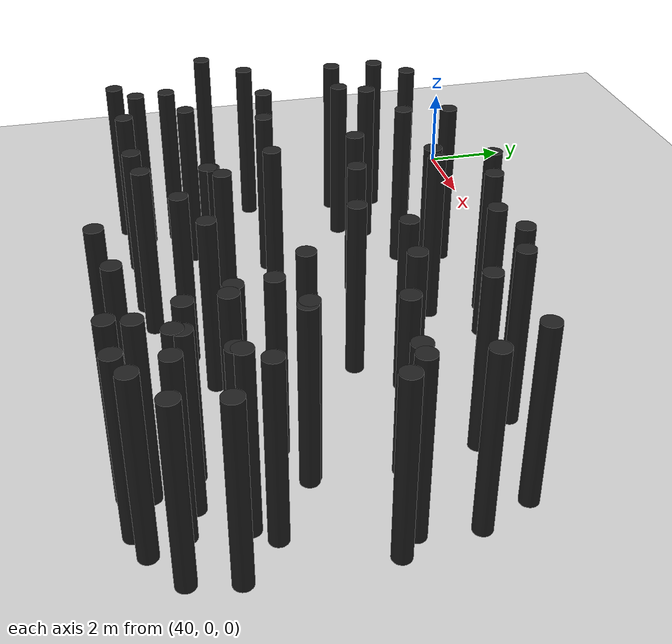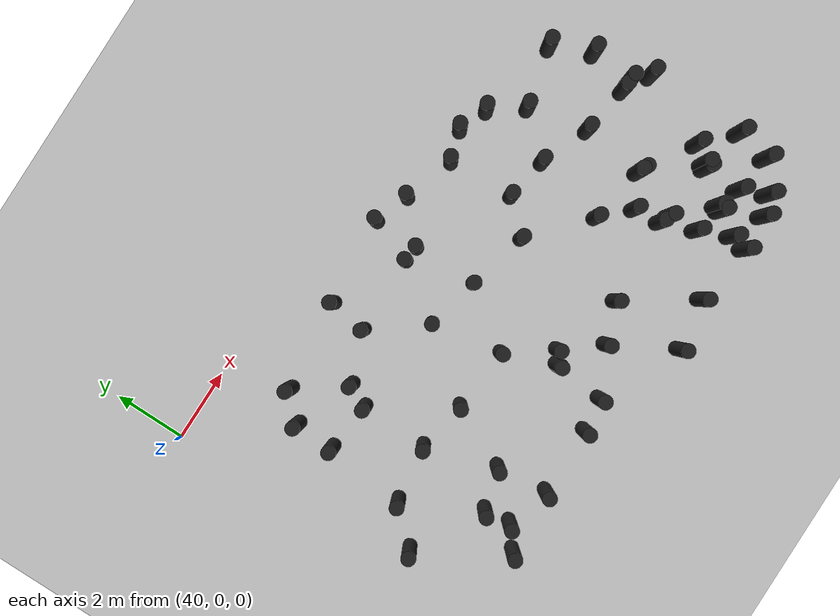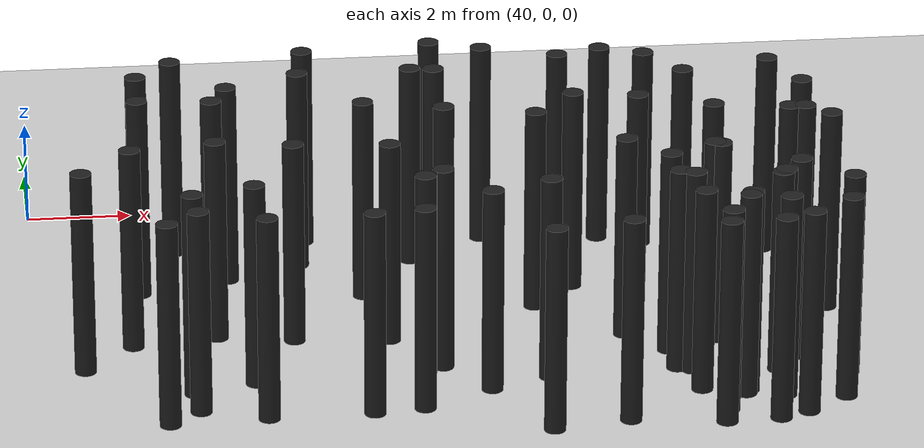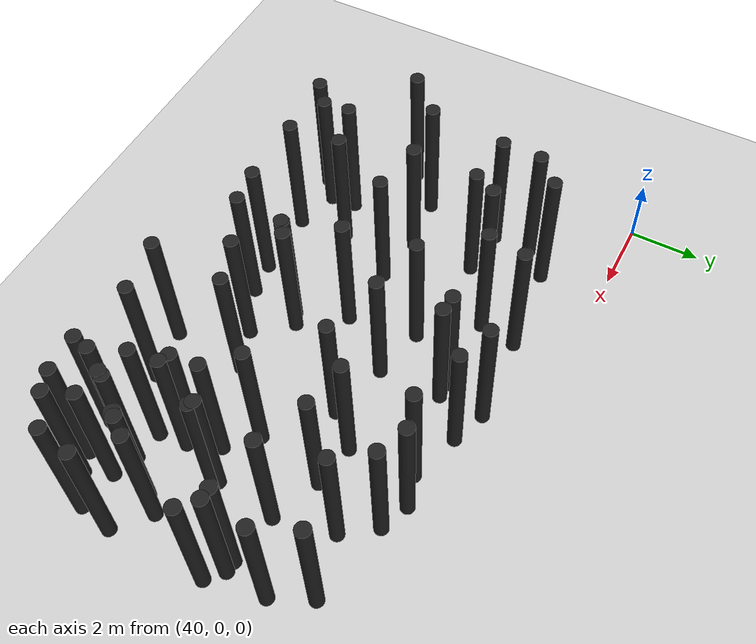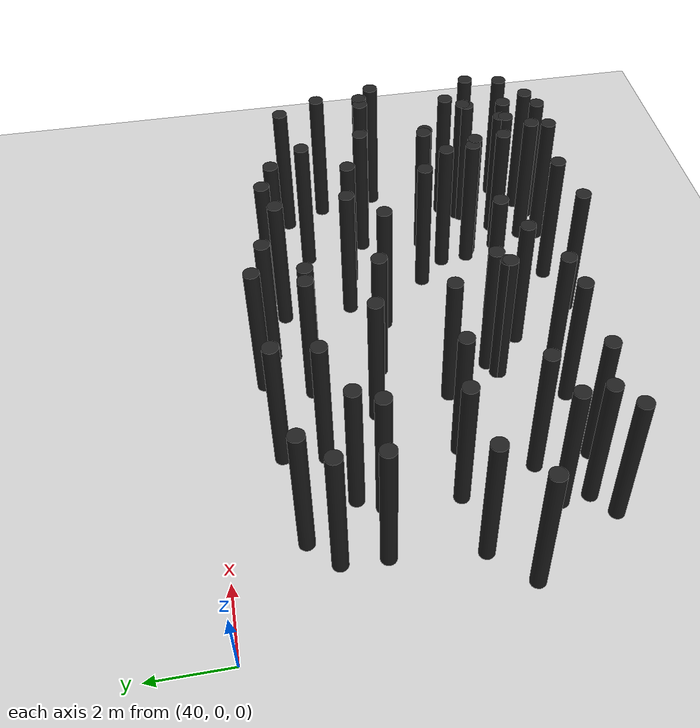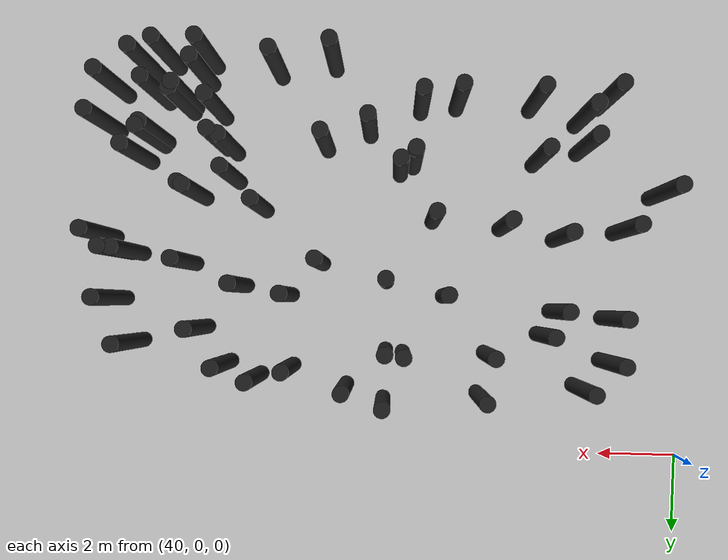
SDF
<sdf version="1.7">
 <world name="default">
  <model name="ground_plane">
   <static>1</static>
   <link name="link">
    <collision name="collision">
     <geometry><plane><normal>0 0 1</normal><size>200 200</size></plane></geometry>
     <surface><friction><ode><mu>100</mu><mu2>50</mu2></ode></friction></surface>
    </collision>
    <visual name="visual">
     <cast_shadows>0</cast_shadows>
     <geometry><plane><normal>0 0 1</normal><size>200 200</size></plane></geometry>
     <material>
      <script><uri>file://media/materials/scripts/gazebo.material</uri><name>Gazebo/Grey</name></script>
     </material>
    </visual>
   </link>
  </model>
  <model name="forest_clone_3_0">
   <pose>45.0865 -2.57981 0.00482 0 -0 0</pose>
   <static>1</static>
   <link name="cylinder::link">
    <inertial>
     <mass>1</mass>
     <inertia><ixx>0.083</ixx><ixy>0</ixy><ixz>0</ixz><iyy>0.083</iyy><iyz>0</iyz><izz>0.083</izz></inertia>
    </inertial>
    <collision name="collision">
     <geometry><cylinder><radius>0.2</radius><length>4</length></cylinder></geometry>
    </collision>
    <visual name="visual">
     <geometry><cylinder><radius>0.2</radius><length>4</length></cylinder></geometry>
     <material>
      <script><uri>file://media/materials/scripts/gazebo.material</uri><name>Gazebo/Black</name></script>
     </material>
    </visual>
    <pose>0 0 2 0 -0 0</pose>
   </link>
  </model>
  <model name="forest_clone_27_0">
   <pose>42.8595 -8.59229 0.00473 0 -0 0</pose>
   <static>1</static>
   <link name="cylinder::link">
    <inertial>
     <mass>1</mass>
     <inertia><ixx>0.083</ixx><ixy>0</ixy><ixz>0</ixz><iyy>0.083</iyy><iyz>0</iyz><izz>0.083</izz></inertia>
    </inertial>
    <collision name="collision">
     <geometry><cylinder><radius>0.2</radius><length>4</length></cylinder></geometry>
    </collision>
    <visual name="visual">
     <geometry><cylinder><radius>0.2</radius><length>4</length></cylinder></geometry>
     <material>
      <script><uri>file://media/materials/scripts/gazebo.material</uri><name>Gazebo/Black</name></script>
     </material>
    </visual>
    <pose>0 0 2 0 -0 0</pose>
   </link>
  </model>
  <model name="forest_clone_37_0">
   <pose>42.275 -9.06508 0.00423 0 -0 0</pose>
   <static>1</static>
   <link name="cylinder::link">
    <inertial>
     <mass>1</mass>
     <inertia><ixx>0.083</ixx><ixy>0</ixy><ixz>0</ixz><iyy>0.083</iyy><iyz>0</iyz><izz>0.083</izz></inertia>
    </inertial>
    <collision name="collision">
     <geometry><cylinder><radius>0.2</radius><length>4</length></cylinder></geometry>
    </collision>
    <visual name="visual">
     <geometry><cylinder><radius>0.2</radius><length>4</length></cylinder></geometry>
     <material>
      <script><uri>file://media/materials/scripts/gazebo.material</uri><name>Gazebo/Black</name></script>
     </material>
    </visual>
    <pose>0 0 2 0 -0 0</pose>
   </link>
  </model>
  <model name="forest_clone_39_0">
   <pose>45.2577 -1.52691 -0.00272 0 -0 0</pose>
   <static>1</static>
   <link name="cylinder::link">
    <inertial>
     <mass>1</mass>
     <inertia><ixx>0.083</ixx><ixy>0</ixy><ixz>0</ixz><iyy>0.083</iyy><iyz>0</iyz><izz>0.083</izz></inertia>
    </inertial>
    <collision name="collision">
     <geometry><cylinder><radius>0.2</radius><length>4</length></cylinder></geometry>
    </collision>
    <visual name="visual">
     <geometry><cylinder><radius>0.2</radius><length>4</length></cylinder></geometry>
     <material>
      <script><uri>file://media/materials/scripts/gazebo.material</uri><name>Gazebo/Black</name></script>
     </material>
    </visual>
    <pose>0 0 2 0 -0 0</pose>
   </link>
  </model>
  <model name="forest_clone_41_0">
   <pose>43.7077 -3.10852 0.00163 0 -0 0</pose>
   <static>1</static>
   <link name="cylinder::link">
    <inertial>
     <mass>1</mass>
     <inertia><ixx>0.083</ixx><ixy>0</ixy><ixz>0</ixz><iyy>0.083</iyy><iyz>0</iyz><izz>0.083</izz></inertia>
    </inertial>
    <collision name="collision">
     <geometry><cylinder><radius>0.2</radius><length>4</length></cylinder></geometry>
    </collision>
    <visual name="visual">
     <geometry><cylinder><radius>0.2</radius><length>4</length></cylinder></geometry>
     <material>
      <script><uri>file://media/materials/scripts/gazebo.material</uri><name>Gazebo/Black</name></script>
     </material>
    </visual>
    <pose>0 0 2 0 -0 0</pose>
   </link>
  </model>
  <model name="forest_clone_53_0">
   <pose>52.7878 -8.81428 0.00484 0 -0 0</pose>
   <static>1</static>
   <link name="cylinder::link">
    <inertial>
     <mass>1</mass>
     <inertia><ixx>0.083</ixx><ixy>0</ixy><ixz>0</ixz><iyy>0.083</iyy><iyz>0</iyz><izz>0.083</izz></inertia>
    </inertial>
    <collision name="collision">
     <geometry><cylinder><radius>0.2</radius><length>4</length></cylinder></geometry>
    </collision>
    <visual name="visual">
     <geometry><cylinder><radius>0.2</radius><length>4</length></cylinder></geometry>
     <material>
      <script><uri>file://media/materials/scripts/gazebo.material</uri><name>Gazebo/Black</name></script>
     </material>
    </visual>
    <pose>0 0 2 0 -0 0</pose>
   </link>
  </model>
  <model name="forest_clone_65_0">
   <pose>54.8232 -5.3583 0.00351 0 -0 0</pose>
   <static>1</static>
   <link name="cylinder::link">
    <inertial>
     <mass>1</mass>
     <inertia><ixx>0.083</ixx><ixy>0</ixy><ixz>0</ixz><iyy>0.083</iyy><iyz>0</iyz><izz>0.083</izz></inertia>
    </inertial>
    <collision name="collision">
     <geometry><cylinder><radius>0.2</radius><length>4</length></cylinder></geometry>
    </collision>
    <visual name="visual">
     <geometry><cylinder><radius>0.2</radius><length>4</length></cylinder></geometry>
     <material>
      <script><uri>file://media/materials/scripts/gazebo.material</uri><name>Gazebo/Black</name></script>
     </material>
    </visual>
    <pose>0 0 2 0 -0 0</pose>
   </link>
  </model>
  <model name="forest_clone_67_0">
   <pose>50.8869 -6.15588 0.0037 0 -0 0</pose>
   <static>1</static>
   <link name="cylinder::link">
    <inertial>
     <mass>1</mass>
     <inertia><ixx>0.083</ixx><ixy>0</ixy><ixz>0</ixz><iyy>0.083</iyy><iyz>0</iyz><izz>0.083</izz></inertia>
    </inertial>
    <collision name="collision">
     <geometry><cylinder><radius>0.2</radius><length>4</length></cylinder></geometry>
    </collision>
    <visual name="visual">
     <geometry><cylinder><radius>0.2</radius><length>4</length></cylinder></geometry>
     <material>
      <script><uri>file://media/materials/scripts/gazebo.material</uri><name>Gazebo/Black</name></script>
     </material>
    </visual>
    <pose>0 0 2 0 -0 0</pose>
   </link>
  </model>
  <model name="forest_clone_75_0">
   <pose>54.5928 -9.08068 -0.00293 0 -0 0</pose>
   <static>1</static>
   <link name="cylinder::link">
    <inertial>
     <mass>1</mass>
     <inertia><ixx>0.083</ixx><ixy>0</ixy><ixz>0</ixz><iyy>0.083</iyy><iyz>0</iyz><izz>0.083</izz></inertia>
    </inertial>
    <collision name="collision">
     <geometry><cylinder><radius>0.2</radius><length>4</length></cylinder></geometry>
    </collision>
    <visual name="visual">
     <geometry><cylinder><radius>0.2</radius><length>4</length></cylinder></geometry>
     <material>
      <script><uri>file://media/materials/scripts/gazebo.material</uri><name>Gazebo/Black</name></script>
     </material>
    </visual>
    <pose>0 0 2 0 -0 0</pose>
   </link>
  </model>
  <model name="forest_clone_77_0">
   <pose>42.796 -7.8609 0.00337 0 -0 0</pose>
   <static>1</static>
   <link name="cylinder::link">
    <inertial>
     <mass>1</mass>
     <inertia><ixx>0.083</ixx><ixy>0</ixy><ixz>0</ixz><iyy>0.083</iyy><iyz>0</iyz><izz>0.083</izz></inertia>
    </inertial>
    <collision name="collision">
     <geometry><cylinder><radius>0.2</radius><length>4</length></cylinder></geometry>
    </collision>
    <visual name="visual">
     <geometry><cylinder><radius>0.2</radius><length>4</length></cylinder></geometry>
     <material>
      <script><uri>file://media/materials/scripts/gazebo.material</uri><name>Gazebo/Black</name></script>
     </material>
    </visual>
    <pose>0 0 2 0 -0 0</pose>
   </link>
  </model>
  <model name="forest_clone_80_0">
   <pose>42.0502 -2.46728 0.00015 0 -0 0</pose>
   <static>1</static>
   <link name="cylinder::link">
    <inertial>
     <mass>1</mass>
     <inertia><ixx>0.083</ixx><ixy>0</ixy><ixz>0</ixz><iyy>0.083</iyy><iyz>0</iyz><izz>0.083</izz></inertia>
    </inertial>
    <collision name="collision">
     <geometry><cylinder><radius>0.2</radius><length>4</length></cylinder></geometry>
    </collision>
    <visual name="visual">
     <geometry><cylinder><radius>0.2</radius><length>4</length></cylinder></geometry>
     <material>
      <script><uri>file://media/materials/scripts/gazebo.material</uri><name>Gazebo/Black</name></script>
     </material>
    </visual>
    <pose>0 0 2 0 -0 0</pose>
   </link>
  </model>
  <model name="forest_clone_91_0">
   <pose>45.9877 -8.95202 0.00301 0 -0 0</pose>
   <static>1</static>
   <link name="cylinder::link">
    <inertial>
     <mass>1</mass>
     <inertia><ixx>0.083</ixx><ixy>0</ixy><ixz>0</ixz><iyy>0.083</iyy><iyz>0</iyz><izz>0.083</izz></inertia>
    </inertial>
    <collision name="collision">
     <geometry><cylinder><radius>0.2</radius><length>4</length></cylinder></geometry>
    </collision>
    <visual name="visual">
     <geometry><cylinder><radius>0.2</radius><length>4</length></cylinder></geometry>
     <material>
      <script><uri>file://media/materials/scripts/gazebo.material</uri><name>Gazebo/Black</name></script>
     </material>
    </visual>
    <pose>0 0 2 0 -0 0</pose>
   </link>
  </model>
  <model name="forest_clone_92_0">
   <pose>50.0754 -2.13382 -0.00176 0 -0 0</pose>
   <static>1</static>
   <link name="cylinder::link">
    <inertial>
     <mass>1</mass>
     <inertia><ixx>0.083</ixx><ixy>0</ixy><ixz>0</ixz><iyy>0.083</iyy><iyz>0</iyz><izz>0.083</izz></inertia>
    </inertial>
    <collision name="collision">
     <geometry><cylinder><radius>0.2</radius><length>4</length></cylinder></geometry>
    </collision>
    <visual name="visual">
     <geometry><cylinder><radius>0.2</radius><length>4</length></cylinder></geometry>
     <material>
      <script><uri>file://media/materials/scripts/gazebo.material</uri><name>Gazebo/Black</name></script>
     </material>
    </visual>
    <pose>0 0 2 0 -0 0</pose>
   </link>
  </model>
  <model name="forest_clone_110_0">
   <pose>52.2772 -9.89958 0.00273 0 -0 0</pose>
   <static>1</static>
   <link name="cylinder::link">
    <inertial>
     <mass>1</mass>
     <inertia><ixx>0.083</ixx><ixy>0</ixy><ixz>0</ixz><iyy>0.083</iyy><iyz>0</iyz><izz>0.083</izz></inertia>
    </inertial>
    <collision name="collision">
     <geometry><cylinder><radius>0.2</radius><length>4</length></cylinder></geometry>
    </collision>
    <visual name="visual">
     <geometry><cylinder><radius>0.2</radius><length>4</length></cylinder></geometry>
     <material>
      <script><uri>file://media/materials/scripts/gazebo.material</uri><name>Gazebo/Black</name></script>
     </material>
    </visual>
    <pose>0 0 2 0 -0 0</pose>
   </link>
  </model>
  <model name="forest_clone_114_0">
   <pose>52.3488 -3.0794 0.00284 0 -0 0</pose>
   <static>1</static>
   <link name="cylinder::link">
    <inertial>
     <mass>1</mass>
     <inertia><ixx>0.083</ixx><ixy>0</ixy><ixz>0</ixz><iyy>0.083</iyy><iyz>0</iyz><izz>0.083</izz></inertia>
    </inertial>
    <collision name="collision">
     <geometry><cylinder><radius>0.2</radius><length>4</length></cylinder></geometry>
    </collision>
    <visual name="visual">
     <geometry><cylinder><radius>0.2</radius><length>4</length></cylinder></geometry>
     <material>
      <script><uri>file://media/materials/scripts/gazebo.material</uri><name>Gazebo/Black</name></script>
     </material>
    </visual>
    <pose>0 0 2 0 -0 0</pose>
   </link>
  </model>
  <model name="forest_clone_118_0">
   <pose>48.2028 -8.18988 0.00289 0 -0 0</pose>
   <static>1</static>
   <link name="cylinder::link">
    <inertial>
     <mass>1</mass>
     <inertia><ixx>0.083</ixx><ixy>0</ixy><ixz>0</ixz><iyy>0.083</iyy><iyz>0</iyz><izz>0.083</izz></inertia>
    </inertial>
    <collision name="collision">
     <geometry><cylinder><radius>0.2</radius><length>4</length></cylinder></geometry>
    </collision>
    <visual name="visual">
     <geometry><cylinder><radius>0.2</radius><length>4</length></cylinder></geometry>
     <material>
      <script><uri>file://media/materials/scripts/gazebo.material</uri><name>Gazebo/Black</name></script>
     </material>
    </visual>
    <pose>0 0 2 0 -0 0</pose>
   </link>
  </model>
  <model name="forest_clone_124_0">
   <pose>54.1002 -4.94627 -0.00376 0 -0 0</pose>
   <static>1</static>
   <link name="cylinder::link">
    <inertial>
     <mass>1</mass>
     <inertia><ixx>0.083</ixx><ixy>0</ixy><ixz>0</ixz><iyy>0.083</iyy><iyz>0</iyz><izz>0.083</izz></inertia>
    </inertial>
    <collision name="collision">
     <geometry><cylinder><radius>0.2</radius><length>4</length></cylinder></geometry>
    </collision>
    <visual name="visual">
     <geometry><cylinder><radius>0.2</radius><length>4</length></cylinder></geometry>
     <material>
      <script><uri>file://media/materials/scripts/gazebo.material</uri><name>Gazebo/Black</name></script>
     </material>
    </visual>
    <pose>0 0 2 0 -0 0</pose>
   </link>
  </model>
  <model name="forest_clone_130_0">
   <pose>50.5599 -9.66449 0.0002 0 -0 0</pose>
   <static>1</static>
   <link name="cylinder::link">
    <inertial>
     <mass>1</mass>
     <inertia><ixx>0.083</ixx><ixy>0</ixy><ixz>0</ixz><iyy>0.083</iyy><iyz>0</iyz><izz>0.083</izz></inertia>
    </inertial>
    <collision name="collision">
     <geometry><cylinder><radius>0.2</radius><length>4</length></cylinder></geometry>
    </collision>
    <visual name="visual">
     <geometry><cylinder><radius>0.2</radius><length>4</length></cylinder></geometry>
     <material>
      <script><uri>file://media/materials/scripts/gazebo.material</uri><name>Gazebo/Black</name></script>
     </material>
    </visual>
    <pose>0 0 2 0 -0 0</pose>
   </link>
  </model>
  <model name="forest_clone_136_0">
   <pose>44.766 -5.82862 0.00143 0 -0 0</pose>
   <static>1</static>
   <link name="cylinder::link">
    <inertial>
     <mass>1</mass>
     <inertia><ixx>0.083</ixx><ixy>0</ixy><ixz>0</ixz><iyy>0.083</iyy><iyz>0</iyz><izz>0.083</izz></inertia>
    </inertial>
    <collision name="collision">
     <geometry><cylinder><radius>0.2</radius><length>4</length></cylinder></geometry>
    </collision>
    <visual name="visual">
     <geometry><cylinder><radius>0.2</radius><length>4</length></cylinder></geometry>
     <material>
      <script><uri>file://media/materials/scripts/gazebo.material</uri><name>Gazebo/Black</name></script>
     </material>
    </visual>
    <pose>0 0 2 0 -0 0</pose>
   </link>
  </model>
  <model name="forest_clone_144_0">
   <pose>51.3553 -4.17188 -0.00422 0 -0 0</pose>
   <static>1</static>
   <link name="cylinder::link">
    <inertial>
     <mass>1</mass>
     <inertia><ixx>0.083</ixx><ixy>0</ixy><ixz>0</ixz><iyy>0.083</iyy><iyz>0</iyz><izz>0.083</izz></inertia>
    </inertial>
    <collision name="collision">
     <geometry><cylinder><radius>0.2</radius><length>4</length></cylinder></geometry>
    </collision>
    <visual name="visual">
     <geometry><cylinder><radius>0.2</radius><length>4</length></cylinder></geometry>
     <material>
      <script><uri>file://media/materials/scripts/gazebo.material</uri><name>Gazebo/Black</name></script>
     </material>
    </visual>
    <pose>0 0 2 0 -0 0</pose>
   </link>
  </model>
  <model name="forest_clone_8_1">
   <pose>47.053 -7.43649 0.00048 0 -0 0</pose>
   <static>1</static>
   <link name="cylinder::link">
    <inertial>
     <mass>1</mass>
     <inertia><ixx>0.083</ixx><ixy>0</ixy><ixz>0</ixz><iyy>0.083</iyy><iyz>0</iyz><izz>0.083</izz></inertia>
    </inertial>
    <collision name="collision">
     <geometry><cylinder><radius>0.2</radius><length>4</length></cylinder></geometry>
    </collision>
    <visual name="visual">
     <geometry><cylinder><radius>0.2</radius><length>4</length></cylinder></geometry>
     <material>
      <script><uri>file://media/materials/scripts/gazebo.material</uri><name>Gazebo/Black</name></script>
     </material>
    </visual>
    <pose>0 0 2 0 -0 0</pose>
   </link>
  </model>
  <model name="forest_clone_24_1">
   <pose>51.9395 -7.75148 0.00053 0 -0 0</pose>
   <static>1</static>
   <link name="cylinder::link">
    <inertial>
     <mass>1</mass>
     <inertia><ixx>0.083</ixx><ixy>0</ixy><ixz>0</ixz><iyy>0.083</iyy><iyz>0</iyz><izz>0.083</izz></inertia>
    </inertial>
    <collision name="collision">
     <geometry><cylinder><radius>0.2</radius><length>4</length></cylinder></geometry>
    </collision>
    <visual name="visual">
     <geometry><cylinder><radius>0.2</radius><length>4</length></cylinder></geometry>
     <material>
      <script><uri>file://media/materials/scripts/gazebo.material</uri><name>Gazebo/Black</name></script>
     </material>
    </visual>
    <pose>0 0 2 0 -0 0</pose>
   </link>
  </model>
  <model name="forest_clone_28_1">
   <pose>52.8501 -8.67514 -0.00383 0 -0 0</pose>
   <static>1</static>
   <link name="cylinder::link">
    <inertial>
     <mass>1</mass>
     <inertia><ixx>0.083</ixx><ixy>0</ixy><ixz>0</ixz><iyy>0.083</iyy><iyz>0</iyz><izz>0.083</izz></inertia>
    </inertial>
    <collision name="collision">
     <geometry><cylinder><radius>0.2</radius><length>4</length></cylinder></geometry>
    </collision>
    <visual name="visual">
     <geometry><cylinder><radius>0.2</radius><length>4</length></cylinder></geometry>
     <material>
      <script><uri>file://media/materials/scripts/gazebo.material</uri><name>Gazebo/Black</name></script>
     </material>
    </visual>
    <pose>0 0 2 0 -0 0</pose>
   </link>
  </model>
  <model name="forest_clone_33_1">
   <pose>51.7141 -2.19165 -0.0033 0 -0 0</pose>
   <static>1</static>
   <link name="cylinder::link">
    <inertial>
     <mass>1</mass>
     <inertia><ixx>0.083</ixx><ixy>0</ixy><ixz>0</ixz><iyy>0.083</iyy><iyz>0</iyz><izz>0.083</izz></inertia>
    </inertial>
    <collision name="collision">
     <geometry><cylinder><radius>0.2</radius><length>4</length></cylinder></geometry>
    </collision>
    <visual name="visual">
     <geometry><cylinder><radius>0.2</radius><length>4</length></cylinder></geometry>
     <material>
      <script><uri>file://media/materials/scripts/gazebo.material</uri><name>Gazebo/Black</name></script>
     </material>
    </visual>
    <pose>0 0 2 0 -0 0</pose>
   </link>
  </model>
  <model name="forest_clone_63_1">
   <pose>47.4023 -7.18724 0.00406 0 -0 0</pose>
   <static>1</static>
   <link name="cylinder::link">
    <inertial>
     <mass>1</mass>
     <inertia><ixx>0.083</ixx><ixy>0</ixy><ixz>0</ixz><iyy>0.083</iyy><iyz>0</iyz><izz>0.083</izz></inertia>
    </inertial>
    <collision name="collision">
     <geometry><cylinder><radius>0.2</radius><length>4</length></cylinder></geometry>
    </collision>
    <visual name="visual">
     <geometry><cylinder><radius>0.2</radius><length>4</length></cylinder></geometry>
     <material>
      <script><uri>file://media/materials/scripts/gazebo.material</uri><name>Gazebo/Black</name></script>
     </material>
    </visual>
    <pose>0 0 2 0 -0 0</pose>
   </link>
  </model>
  <model name="forest_clone_68_1">
   <pose>49.3619 -4.80098 0.00459 0 -0 0</pose>
   <static>1</static>
   <link name="cylinder::link">
    <inertial>
     <mass>1</mass>
     <inertia><ixx>0.083</ixx><ixy>0</ixy><ixz>0</ixz><iyy>0.083</iyy><iyz>0</iyz><izz>0.083</izz></inertia>
    </inertial>
    <collision name="collision">
     <geometry><cylinder><radius>0.2</radius><length>4</length></cylinder></geometry>
    </collision>
    <visual name="visual">
     <geometry><cylinder><radius>0.2</radius><length>4</length></cylinder></geometry>
     <material>
      <script><uri>file://media/materials/scripts/gazebo.material</uri><name>Gazebo/Black</name></script>
     </material>
    </visual>
    <pose>0 0 2 0 -0 0</pose>
   </link>
  </model>
  <model name="forest_clone_69_1">
   <pose>47.6873 -4.37362 -0.0038 0 -0 0</pose>
   <static>1</static>
   <link name="cylinder::link">
    <inertial>
     <mass>1</mass>
     <inertia><ixx>0.083</ixx><ixy>0</ixy><ixz>0</ixz><iyy>0.083</iyy><iyz>0</iyz><izz>0.083</izz></inertia>
    </inertial>
    <collision name="collision">
     <geometry><cylinder><radius>0.2</radius><length>4</length></cylinder></geometry>
    </collision>
    <visual name="visual">
     <geometry><cylinder><radius>0.2</radius><length>4</length></cylinder></geometry>
     <material>
      <script><uri>file://media/materials/scripts/gazebo.material</uri><name>Gazebo/Black</name></script>
     </material>
    </visual>
    <pose>0 0 2 0 -0 0</pose>
   </link>
  </model>
  <model name="forest_clone_70_1">
   <pose>52.7039 -4.71907 -0.0016 0 -0 0</pose>
   <static>1</static>
   <link name="cylinder::link">
    <inertial>
     <mass>1</mass>
     <inertia><ixx>0.083</ixx><ixy>0</ixy><ixz>0</ixz><iyy>0.083</iyy><iyz>0</iyz><izz>0.083</izz></inertia>
    </inertial>
    <collision name="collision">
     <geometry><cylinder><radius>0.2</radius><length>4</length></cylinder></geometry>
    </collision>
    <visual name="visual">
     <geometry><cylinder><radius>0.2</radius><length>4</length></cylinder></geometry>
     <material>
      <script><uri>file://media/materials/scripts/gazebo.material</uri><name>Gazebo/Black</name></script>
     </material>
    </visual>
    <pose>0 0 2 0 -0 0</pose>
   </link>
  </model>
  <model name="forest_clone_71_1">
   <pose>51.6814 -7.6333 -0.00281 0 -0 0</pose>
   <static>1</static>
   <link name="cylinder::link">
    <inertial>
     <mass>1</mass>
     <inertia><ixx>0.083</ixx><ixy>0</ixy><ixz>0</ixz><iyy>0.083</iyy><iyz>0</iyz><izz>0.083</izz></inertia>
    </inertial>
    <collision name="collision">
     <geometry><cylinder><radius>0.2</radius><length>4</length></cylinder></geometry>
    </collision>
    <visual name="visual">
     <geometry><cylinder><radius>0.2</radius><length>4</length></cylinder></geometry>
     <material>
      <script><uri>file://media/materials/scripts/gazebo.material</uri><name>Gazebo/Black</name></script>
     </material>
    </visual>
    <pose>0 0 2 0 -0 0</pose>
   </link>
  </model>
  <model name="forest_clone_76_1">
   <pose>50.9136 -1.88013 -0.00144 0 -0 0</pose>
   <static>1</static>
   <link name="cylinder::link">
    <inertial>
     <mass>1</mass>
     <inertia><ixx>0.083</ixx><ixy>0</ixy><ixz>0</ixz><iyy>0.083</iyy><iyz>0</iyz><izz>0.083</izz></inertia>
    </inertial>
    <collision name="collision">
     <geometry><cylinder><radius>0.2</radius><length>4</length></cylinder></geometry>
    </collision>
    <visual name="visual">
     <geometry><cylinder><radius>0.2</radius><length>4</length></cylinder></geometry>
     <material>
      <script><uri>file://media/materials/scripts/gazebo.material</uri><name>Gazebo/Black</name></script>
     </material>
    </visual>
    <pose>0 0 2 0 -0 0</pose>
   </link>
  </model>
  <model name="forest_clone_85_1">
   <pose>47.6694 -2.59472 -0.00351 0 -0 0</pose>
   <static>1</static>
   <link name="cylinder::link">
    <inertial>
     <mass>1</mass>
     <inertia><ixx>0.083</ixx><ixy>0</ixy><ixz>0</ixz><iyy>0.083</iyy><iyz>0</iyz><izz>0.083</izz></inertia>
    </inertial>
    <collision name="collision">
     <geometry><cylinder><radius>0.2</radius><length>4</length></cylinder></geometry>
    </collision>
    <visual name="visual">
     <geometry><cylinder><radius>0.2</radius><length>4</length></cylinder></geometry>
     <material>
      <script><uri>file://media/materials/scripts/gazebo.material</uri><name>Gazebo/Black</name></script>
     </material>
    </visual>
    <pose>0 0 2 0 -0 0</pose>
   </link>
  </model>
  <model name="forest_clone_87_1">
   <pose>53.5062 -8.92436 -0.00485 0 -0 0</pose>
   <static>1</static>
   <link name="cylinder::link">
    <inertial>
     <mass>1</mass>
     <inertia><ixx>0.083</ixx><ixy>0</ixy><ixz>0</ixz><iyy>0.083</iyy><iyz>0</iyz><izz>0.083</izz></inertia>
    </inertial>
    <collision name="collision">
     <geometry><cylinder><radius>0.2</radius><length>4</length></cylinder></geometry>
    </collision>
    <visual name="visual">
     <geometry><cylinder><radius>0.2</radius><length>4</length></cylinder></geometry>
     <material>
      <script><uri>file://media/materials/scripts/gazebo.material</uri><name>Gazebo/Black</name></script>
     </material>
    </visual>
    <pose>0 0 2 0 -0 0</pose>
   </link>
  </model>
  <model name="forest_clone_88_1">
   <pose>53.9357 -7.35327 0.00427 0 -0 0</pose>
   <static>1</static>
   <link name="cylinder::link">
    <inertial>
     <mass>1</mass>
     <inertia><ixx>0.083</ixx><ixy>0</ixy><ixz>0</ixz><iyy>0.083</iyy><iyz>0</iyz><izz>0.083</izz></inertia>
    </inertial>
    <collision name="collision">
     <geometry><cylinder><radius>0.2</radius><length>4</length></cylinder></geometry>
    </collision>
    <visual name="visual">
     <geometry><cylinder><radius>0.2</radius><length>4</length></cylinder></geometry>
     <material>
      <script><uri>file://media/materials/scripts/gazebo.material</uri><name>Gazebo/Black</name></script>
     </material>
    </visual>
    <pose>0 0 2 0 -0 0</pose>
   </link>
  </model>
  <model name="forest_clone_97_1">
   <pose>49.146 -9.90477 0.00299 0 -0 0</pose>
   <static>1</static>
   <link name="cylinder::link">
    <inertial>
     <mass>1</mass>
     <inertia><ixx>0.083</ixx><ixy>0</ixy><ixz>0</ixz><iyy>0.083</iyy><iyz>0</iyz><izz>0.083</izz></inertia>
    </inertial>
    <collision name="collision">
     <geometry><cylinder><radius>0.2</radius><length>4</length></cylinder></geometry>
    </collision>
    <visual name="visual">
     <geometry><cylinder><radius>0.2</radius><length>4</length></cylinder></geometry>
     <material>
      <script><uri>file://media/materials/scripts/gazebo.material</uri><name>Gazebo/Black</name></script>
     </material>
    </visual>
    <pose>0 0 2 0 -0 0</pose>
   </link>
  </model>
  <model name="forest_clone_104_1">
   <pose>54.0204 -2.68612 0.00015 0 -0 0</pose>
   <static>1</static>
   <link name="cylinder::link">
    <inertial>
     <mass>1</mass>
     <inertia><ixx>0.083</ixx><ixy>0</ixy><ixz>0</ixz><iyy>0.083</iyy><iyz>0</iyz><izz>0.083</izz></inertia>
    </inertial>
    <collision name="collision">
     <geometry><cylinder><radius>0.2</radius><length>4</length></cylinder></geometry>
    </collision>
    <visual name="visual">
     <geometry><cylinder><radius>0.2</radius><length>4</length></cylinder></geometry>
     <material>
      <script><uri>file://media/materials/scripts/gazebo.material</uri><name>Gazebo/Black</name></script>
     </material>
    </visual>
    <pose>0 0 2 0 -0 0</pose>
   </link>
  </model>
  <model name="forest_clone_148_1">
   <pose>49.3062 -7.78062 -0.00306 0 -0 0</pose>
   <static>1</static>
   <link name="cylinder::link">
    <inertial>
     <mass>1</mass>
     <inertia><ixx>0.083</ixx><ixy>0</ixy><ixz>0</ixz><iyy>0.083</iyy><iyz>0</iyz><izz>0.083</izz></inertia>
    </inertial>
    <collision name="collision">
     <geometry><cylinder><radius>0.2</radius><length>4</length></cylinder></geometry>
    </collision>
    <visual name="visual">
     <geometry><cylinder><radius>0.2</radius><length>4</length></cylinder></geometry>
     <material>
      <script><uri>file://media/materials/scripts/gazebo.material</uri><name>Gazebo/Black</name></script>
     </material>
    </visual>
    <pose>0 0 2 0 -0 0</pose>
   </link>
  </model>
  <model name="forest_clone_149_1">
   <pose>47.7037 -1.32897 0.00127 0 -0 0</pose>
   <static>1</static>
   <link name="cylinder::link">
    <inertial>
     <mass>1</mass>
     <inertia><ixx>0.083</ixx><ixy>0</ixy><ixz>0</ixz><iyy>0.083</iyy><iyz>0</iyz><izz>0.083</izz></inertia>
    </inertial>
    <collision name="collision">
     <geometry><cylinder><radius>0.2</radius><length>4</length></cylinder></geometry>
    </collision>
    <visual name="visual">
     <geometry><cylinder><radius>0.2</radius><length>4</length></cylinder></geometry>
     <material>
      <script><uri>file://media/materials/scripts/gazebo.material</uri><name>Gazebo/Black</name></script>
     </material>
    </visual>
    <pose>0 0 2 0 -0 0</pose>
   </link>
  </model>
  <model name="forest_clone_1_2">
   <pose>43.9375 -7.53225 -0.0021 0 -0 0</pose>
   <static>1</static>
   <link name="cylinder::link">
    <inertial>
     <mass>1</mass>
     <inertia><ixx>0.083</ixx><ixy>0</ixy><ixz>0</ixz><iyy>0.083</iyy><iyz>0</iyz><izz>0.083</izz></inertia>
    </inertial>
    <collision name="collision">
     <geometry><cylinder><radius>0.2</radius><length>4</length></cylinder></geometry>
    </collision>
    <visual name="visual">
     <geometry><cylinder><radius>0.2</radius><length>4</length></cylinder></geometry>
     <material>
      <script><uri>file://media/materials/scripts/gazebo.material</uri><name>Gazebo/Black</name></script>
     </material>
    </visual>
    <pose>0 0 2 0 -0 0</pose>
   </link>
  </model>
  <model name="forest_clone_8_2">
   <pose>47.0683 -7.39203 -0.00133 0 -0 0</pose>
   <static>1</static>
   <link name="cylinder::link">
    <inertial>
     <mass>1</mass>
     <inertia><ixx>0.083</ixx><ixy>0</ixy><ixz>0</ixz><iyy>0.083</iyy><iyz>0</iyz><izz>0.083</izz></inertia>
    </inertial>
    <collision name="collision">
     <geometry><cylinder><radius>0.2</radius><length>4</length></cylinder></geometry>
    </collision>
    <visual name="visual">
     <geometry><cylinder><radius>0.2</radius><length>4</length></cylinder></geometry>
     <material>
      <script><uri>file://media/materials/scripts/gazebo.material</uri><name>Gazebo/Black</name></script>
     </material>
    </visual>
    <pose>0 0 2 0 -0 0</pose>
   </link>
  </model>
  <model name="forest_clone_11_2">
   <pose>52.3805 -9.43186 0.00411 0 -0 0</pose>
   <static>1</static>
   <link name="cylinder::link">
    <inertial>
     <mass>1</mass>
     <inertia><ixx>0.083</ixx><ixy>0</ixy><ixz>0</ixz><iyy>0.083</iyy><iyz>0</iyz><izz>0.083</izz></inertia>
    </inertial>
    <collision name="collision">
     <geometry><cylinder><radius>0.2</radius><length>4</length></cylinder></geometry>
    </collision>
    <visual name="visual">
     <geometry><cylinder><radius>0.2</radius><length>4</length></cylinder></geometry>
     <material>
      <script><uri>file://media/materials/scripts/gazebo.material</uri><name>Gazebo/Black</name></script>
     </material>
    </visual>
    <pose>0 0 2 0 -0 0</pose>
   </link>
  </model>
  <model name="forest_clone_19_2">
   <pose>47.2258 -2.5448 0.00111 0 -0 0</pose>
   <static>1</static>
   <link name="cylinder::link">
    <inertial>
     <mass>1</mass>
     <inertia><ixx>0.083</ixx><ixy>0</ixy><ixz>0</ixz><iyy>0.083</iyy><iyz>0</iyz><izz>0.083</izz></inertia>
    </inertial>
    <collision name="collision">
     <geometry><cylinder><radius>0.2</radius><length>4</length></cylinder></geometry>
    </collision>
    <visual name="visual">
     <geometry><cylinder><radius>0.2</radius><length>4</length></cylinder></geometry>
     <material>
      <script><uri>file://media/materials/scripts/gazebo.material</uri><name>Gazebo/Black</name></script>
     </material>
    </visual>
    <pose>0 0 2 0 -0 0</pose>
   </link>
  </model>
  <model name="forest_clone_25_2">
   <pose>54.7881 -8.13181 0.00267 0 -0 0</pose>
   <static>1</static>
   <link name="cylinder::link">
    <inertial>
     <mass>1</mass>
     <inertia><ixx>0.083</ixx><ixy>0</ixy><ixz>0</ixz><iyy>0.083</iyy><iyz>0</iyz><izz>0.083</izz></inertia>
    </inertial>
    <collision name="collision">
     <geometry><cylinder><radius>0.2</radius><length>4</length></cylinder></geometry>
    </collision>
    <visual name="visual">
     <geometry><cylinder><radius>0.2</radius><length>4</length></cylinder></geometry>
     <material>
      <script><uri>file://media/materials/scripts/gazebo.material</uri><name>Gazebo/Black</name></script>
     </material>
    </visual>
    <pose>0 0 2 0 -0 0</pose>
   </link>
  </model>
  <model name="forest_clone_29_2">
   <pose>53.5215 -7.88224 -0.00162 0 -0 0</pose>
   <static>1</static>
   <link name="cylinder::link">
    <inertial>
     <mass>1</mass>
     <inertia><ixx>0.083</ixx><ixy>0</ixy><ixz>0</ixz><iyy>0.083</iyy><iyz>0</iyz><izz>0.083</izz></inertia>
    </inertial>
    <collision name="collision">
     <geometry><cylinder><radius>0.2</radius><length>4</length></cylinder></geometry>
    </collision>
    <visual name="visual">
     <geometry><cylinder><radius>0.2</radius><length>4</length></cylinder></geometry>
     <material>
      <script><uri>file://media/materials/scripts/gazebo.material</uri><name>Gazebo/Black</name></script>
     </material>
    </visual>
    <pose>0 0 2 0 -0 0</pose>
   </link>
  </model>
  <model name="forest_clone_33_2">
   <pose>53.2727 -9.84897 0.00201 0 -0 0</pose>
   <static>1</static>
   <link name="cylinder::link">
    <inertial>
     <mass>1</mass>
     <inertia><ixx>0.083</ixx><ixy>0</ixy><ixz>0</ixz><iyy>0.083</iyy><iyz>0</iyz><izz>0.083</izz></inertia>
    </inertial>
    <collision name="collision">
     <geometry><cylinder><radius>0.2</radius><length>4</length></cylinder></geometry>
    </collision>
    <visual name="visual">
     <geometry><cylinder><radius>0.2</radius><length>4</length></cylinder></geometry>
     <material>
      <script><uri>file://media/materials/scripts/gazebo.material</uri><name>Gazebo/Black</name></script>
     </material>
    </visual>
    <pose>0 0 2 0 -0 0</pose>
   </link>
  </model>
  <model name="forest_clone_34_2">
   <pose>50.1613 -3.96493 -0.00283 0 -0 0</pose>
   <static>1</static>
   <link name="cylinder::link">
    <inertial>
     <mass>1</mass>
     <inertia><ixx>0.083</ixx><ixy>0</ixy><ixz>0</ixz><iyy>0.083</iyy><iyz>0</iyz><izz>0.083</izz></inertia>
    </inertial>
    <collision name="collision">
     <geometry><cylinder><radius>0.2</radius><length>4</length></cylinder></geometry>
    </collision>
    <visual name="visual">
     <geometry><cylinder><radius>0.2</radius><length>4</length></cylinder></geometry>
     <material>
      <script><uri>file://media/materials/scripts/gazebo.material</uri><name>Gazebo/Black</name></script>
     </material>
    </visual>
    <pose>0 0 2 0 -0 0</pose>
   </link>
  </model>
  <model name="forest_clone_48_2">
   <pose>41.7729 -5.7985 -0.00416 0 -0 0</pose>
   <static>1</static>
   <link name="cylinder::link">
    <inertial>
     <mass>1</mass>
     <inertia><ixx>0.083</ixx><ixy>0</ixy><ixz>0</ixz><iyy>0.083</iyy><iyz>0</iyz><izz>0.083</izz></inertia>
    </inertial>
    <collision name="collision">
     <geometry><cylinder><radius>0.2</radius><length>4</length></cylinder></geometry>
    </collision>
    <visual name="visual">
     <geometry><cylinder><radius>0.2</radius><length>4</length></cylinder></geometry>
     <material>
      <script><uri>file://media/materials/scripts/gazebo.material</uri><name>Gazebo/Black</name></script>
     </material>
    </visual>
    <pose>0 0 2 0 -0 0</pose>
   </link>
  </model>
  <model name="forest_clone_59_2">
   <pose>54.5114 -3.76752 0.00081 0 -0 0</pose>
   <static>1</static>
   <link name="cylinder::link">
    <inertial>
     <mass>1</mass>
     <inertia><ixx>0.083</ixx><ixy>0</ixy><ixz>0</ixz><iyy>0.083</iyy><iyz>0</iyz><izz>0.083</izz></inertia>
    </inertial>
    <collision name="collision">
     <geometry><cylinder><radius>0.2</radius><length>4</length></cylinder></geometry>
    </collision>
    <visual name="visual">
     <geometry><cylinder><radius>0.2</radius><length>4</length></cylinder></geometry>
     <material>
      <script><uri>file://media/materials/scripts/gazebo.material</uri><name>Gazebo/Black</name></script>
     </material>
    </visual>
    <pose>0 0 2 0 -0 0</pose>
   </link>
  </model>
  <model name="forest_clone_70_2">
   <pose>46.9104 -8.83331 -0.00032 0 -0 0</pose>
   <static>1</static>
   <link name="cylinder::link">
    <inertial>
     <mass>1</mass>
     <inertia><ixx>0.083</ixx><ixy>0</ixy><ixz>0</ixz><iyy>0.083</iyy><iyz>0</iyz><izz>0.083</izz></inertia>
    </inertial>
    <collision name="collision">
     <geometry><cylinder><radius>0.2</radius><length>4</length></cylinder></geometry>
    </collision>
    <visual name="visual">
     <geometry><cylinder><radius>0.2</radius><length>4</length></cylinder></geometry>
     <material>
      <script><uri>file://media/materials/scripts/gazebo.material</uri><name>Gazebo/Black</name></script>
     </material>
    </visual>
    <pose>0 0 2 0 -0 0</pose>
   </link>
  </model>
  <model name="forest_clone_72_2">
   <pose>46.5327 -5.97388 -0.0003 0 -0 0</pose>
   <static>1</static>
   <link name="cylinder::link">
    <inertial>
     <mass>1</mass>
     <inertia><ixx>0.083</ixx><ixy>0</ixy><ixz>0</ixz><iyy>0.083</iyy><iyz>0</iyz><izz>0.083</izz></inertia>
    </inertial>
    <collision name="collision">
     <geometry><cylinder><radius>0.2</radius><length>4</length></cylinder></geometry>
    </collision>
    <visual name="visual">
     <geometry><cylinder><radius>0.2</radius><length>4</length></cylinder></geometry>
     <material>
      <script><uri>file://media/materials/scripts/gazebo.material</uri><name>Gazebo/Black</name></script>
     </material>
    </visual>
    <pose>0 0 2 0 -0 0</pose>
   </link>
  </model>
  <model name="forest_clone_78_2">
   <pose>43.3908 -3.71417 0.00123 0 -0 0</pose>
   <static>1</static>
   <link name="cylinder::link">
    <inertial>
     <mass>1</mass>
     <inertia><ixx>0.083</ixx><ixy>0</ixy><ixz>0</ixz><iyy>0.083</iyy><iyz>0</iyz><izz>0.083</izz></inertia>
    </inertial>
    <collision name="collision">
     <geometry><cylinder><radius>0.2</radius><length>4</length></cylinder></geometry>
    </collision>
    <visual name="visual">
     <geometry><cylinder><radius>0.2</radius><length>4</length></cylinder></geometry>
     <material>
      <script><uri>file://media/materials/scripts/gazebo.material</uri><name>Gazebo/Black</name></script>
     </material>
    </visual>
    <pose>0 0 2 0 -0 0</pose>
   </link>
  </model>
  <model name="forest_clone_87_2">
   <pose>54.3936 -4.96412 -0.003 0 -0 0</pose>
   <static>1</static>
   <link name="cylinder::link">
    <inertial>
     <mass>1</mass>
     <inertia><ixx>0.083</ixx><ixy>0</ixy><ixz>0</ixz><iyy>0.083</iyy><iyz>0</iyz><izz>0.083</izz></inertia>
    </inertial>
    <collision name="collision">
     <geometry><cylinder><radius>0.2</radius><length>4</length></cylinder></geometry>
    </collision>
    <visual name="visual">
     <geometry><cylinder><radius>0.2</radius><length>4</length></cylinder></geometry>
     <material>
      <script><uri>file://media/materials/scripts/gazebo.material</uri><name>Gazebo/Black</name></script>
     </material>
    </visual>
    <pose>0 0 2 0 -0 0</pose>
   </link>
  </model>
  <model name="forest_clone_90_2">
   <pose>42.7341 -1.79485 -0.00369 0 -0 0</pose>
   <static>1</static>
   <link name="cylinder::link">
    <inertial>
     <mass>1</mass>
     <inertia><ixx>0.083</ixx><ixy>0</ixy><ixz>0</ixz><iyy>0.083</iyy><iyz>0</iyz><izz>0.083</izz></inertia>
    </inertial>
    <collision name="collision">
     <geometry><cylinder><radius>0.2</radius><length>4</length></cylinder></geometry>
    </collision>
    <visual name="visual">
     <geometry><cylinder><radius>0.2</radius><length>4</length></cylinder></geometry>
     <material>
      <script><uri>file://media/materials/scripts/gazebo.material</uri><name>Gazebo/Black</name></script>
     </material>
    </visual>
    <pose>0 0 2 0 -0 0</pose>
   </link>
  </model>
  <model name="forest_clone_99_2">
   <pose>43.3495 -5.57824 0.0019 0 -0 0</pose>
   <static>1</static>
   <link name="cylinder::link">
    <inertial>
     <mass>1</mass>
     <inertia><ixx>0.083</ixx><ixy>0</ixy><ixz>0</ixz><iyy>0.083</iyy><iyz>0</iyz><izz>0.083</izz></inertia>
    </inertial>
    <collision name="collision">
     <geometry><cylinder><radius>0.2</radius><length>4</length></cylinder></geometry>
    </collision>
    <visual name="visual">
     <geometry><cylinder><radius>0.2</radius><length>4</length></cylinder></geometry>
     <material>
      <script><uri>file://media/materials/scripts/gazebo.material</uri><name>Gazebo/Black</name></script>
     </material>
    </visual>
    <pose>0 0 2 0 -0 0</pose>
   </link>
  </model>
  <model name="forest_clone_102_2">
   <pose>51.6109 -6.88549 -0.00183 0 -0 0</pose>
   <static>1</static>
   <link name="cylinder::link">
    <inertial>
     <mass>1</mass>
     <inertia><ixx>0.083</ixx><ixy>0</ixy><ixz>0</ixz><iyy>0.083</iyy><iyz>0</iyz><izz>0.083</izz></inertia>
    </inertial>
    <collision name="collision">
     <geometry><cylinder><radius>0.2</radius><length>4</length></cylinder></geometry>
    </collision>
    <visual name="visual">
     <geometry><cylinder><radius>0.2</radius><length>4</length></cylinder></geometry>
     <material>
      <script><uri>file://media/materials/scripts/gazebo.material</uri><name>Gazebo/Black</name></script>
     </material>
    </visual>
    <pose>0 0 2 0 -0 0</pose>
   </link>
  </model>
  <model name="forest_clone_111_2">
   <pose>40.845 -6.74366 -0.00142 0 -0 0</pose>
   <static>1</static>
   <link name="cylinder::link">
    <inertial>
     <mass>1</mass>
     <inertia><ixx>0.083</ixx><ixy>0</ixy><ixz>0</ixz><iyy>0.083</iyy><iyz>0</iyz><izz>0.083</izz></inertia>
    </inertial>
    <collision name="collision">
     <geometry><cylinder><radius>0.2</radius><length>4</length></cylinder></geometry>
    </collision>
    <visual name="visual">
     <geometry><cylinder><radius>0.2</radius><length>4</length></cylinder></geometry>
     <material>
      <script><uri>file://media/materials/scripts/gazebo.material</uri><name>Gazebo/Black</name></script>
     </material>
    </visual>
    <pose>0 0 2 0 -0 0</pose>
   </link>
  </model>
  <model name="forest_clone_116_2">
   <pose>46.2064 -4.03217 0.0018 0 -0 0</pose>
   <static>1</static>
   <link name="cylinder::link">
    <inertial>
     <mass>1</mass>
     <inertia><ixx>0.083</ixx><ixy>0</ixy><ixz>0</ixz><iyy>0.083</iyy><iyz>0</iyz><izz>0.083</izz></inertia>
    </inertial>
    <collision name="collision">
     <geometry><cylinder><radius>0.2</radius><length>4</length></cylinder></geometry>
    </collision>
    <visual name="visual">
     <geometry><cylinder><radius>0.2</radius><length>4</length></cylinder></geometry>
     <material>
      <script><uri>file://media/materials/scripts/gazebo.material</uri><name>Gazebo/Black</name></script>
     </material>
    </visual>
    <pose>0 0 2 0 -0 0</pose>
   </link>
  </model>
  <model name="forest_clone_122_2">
   <pose>52.4819 -6.43916 -0.00308 0 -0 0</pose>
   <static>1</static>
   <link name="cylinder::link">
    <inertial>
     <mass>1</mass>
     <inertia><ixx>0.083</ixx><ixy>0</ixy><ixz>0</ixz><iyy>0.083</iyy><iyz>0</iyz><izz>0.083</izz></inertia>
    </inertial>
    <collision name="collision">
     <geometry><cylinder><radius>0.2</radius><length>4</length></cylinder></geometry>
    </collision>
    <visual name="visual">
     <geometry><cylinder><radius>0.2</radius><length>4</length></cylinder></geometry>
     <material>
      <script><uri>file://media/materials/scripts/gazebo.material</uri><name>Gazebo/Black</name></script>
     </material>
    </visual>
    <pose>0 0 2 0 -0 0</pose>
   </link>
  </model>
  <model name="forest_clone_125_2">
   <pose>53.5963 -7.78538 0.00048 0 -0 0</pose>
   <static>1</static>
   <link name="cylinder::link">
    <inertial>
     <mass>1</mass>
     <inertia><ixx>0.083</ixx><ixy>0</ixy><ixz>0</ixz><iyy>0.083</iyy><iyz>0</iyz><izz>0.083</izz></inertia>
    </inertial>
    <collision name="collision">
     <geometry><cylinder><radius>0.2</radius><length>4</length></cylinder></geometry>
    </collision>
    <visual name="visual">
     <geometry><cylinder><radius>0.2</radius><length>4</length></cylinder></geometry>
     <material>
      <script><uri>file://media/materials/scripts/gazebo.material</uri><name>Gazebo/Black</name></script>
     </material>
    </visual>
    <pose>0 0 2 0 -0 0</pose>
   </link>
  </model>
  <model name="forest_clone_126_2">
   <pose>52.0139 -8.56003 0.00276 0 -0 0</pose>
   <static>1</static>
   <link name="cylinder::link">
    <inertial>
     <mass>1</mass>
     <inertia><ixx>0.083</ixx><ixy>0</ixy><ixz>0</ixz><iyy>0.083</iyy><iyz>0</iyz><izz>0.083</izz></inertia>
    </inertial>
    <collision name="collision">
     <geometry><cylinder><radius>0.2</radius><length>4</length></cylinder></geometry>
    </collision>
    <visual name="visual">
     <geometry><cylinder><radius>0.2</radius><length>4</length></cylinder></geometry>
     <material>
      <script><uri>file://media/materials/scripts/gazebo.material</uri><name>Gazebo/Black</name></script>
     </material>
    </visual>
    <pose>0 0 2 0 -0 0</pose>
   </link>
  </model>
  <model name="forest_clone_128_2">
   <pose>53.8164 -9.63935 0.00407 0 -0 0</pose>
   <static>1</static>
   <link name="cylinder::link">
    <inertial>
     <mass>1</mass>
     <inertia><ixx>0.083</ixx><ixy>0</ixy><ixz>0</ixz><iyy>0.083</iyy><iyz>0</iyz><izz>0.083</izz></inertia>
    </inertial>
    <collision name="collision">
     <geometry><cylinder><radius>0.2</radius><length>4</length></cylinder></geometry>
    </collision>
    <visual name="visual">
     <geometry><cylinder><radius>0.2</radius><length>4</length></cylinder></geometry>
     <material>
      <script><uri>file://media/materials/scripts/gazebo.material</uri><name>Gazebo/Black</name></script>
     </material>
    </visual>
    <pose>0 0 2 0 -0 0</pose>
   </link>
  </model>
  <model name="forest_clone_136_2">
   <pose>52.5899 -6.49855 -0.00343 0 -0 0</pose>
   <static>1</static>
   <link name="cylinder::link">
    <inertial>
     <mass>1</mass>
     <inertia><ixx>0.083</ixx><ixy>0</ixy><ixz>0</ixz><iyy>0.083</iyy><iyz>0</iyz><izz>0.083</izz></inertia>
    </inertial>
    <collision name="collision">
     <geometry><cylinder><radius>0.2</radius><length>4</length></cylinder></geometry>
    </collision>
    <visual name="visual">
     <geometry><cylinder><radius>0.2</radius><length>4</length></cylinder></geometry>
     <material>
      <script><uri>file://media/materials/scripts/gazebo.material</uri><name>Gazebo/Black</name></script>
     </material>
    </visual>
    <pose>0 0 2 0 -0 0</pose>
   </link>
  </model>
  <model name="forest_clone_144_1">
   <pose>44.0686 -8.96265 -0.00406 0 -0 0</pose>
   <static>1</static>
   <link name="cylinder::link">
    <inertial>
     <mass>1</mass>
     <inertia><ixx>0.083</ixx><ixy>0</ixy><ixz>0</ixz><iyy>0.083</iyy><iyz>0</iyz><izz>0.083</izz></inertia>
    </inertial>
    <collision name="collision">
     <geometry><cylinder><radius>0.2</radius><length>4</length></cylinder></geometry>
    </collision>
    <visual name="visual">
     <geometry><cylinder><radius>0.2</radius><length>4</length></cylinder></geometry>
     <material>
      <script><uri>file://media/materials/scripts/gazebo.material</uri><name>Gazebo/Black</name></script>
     </material>
    </visual>
    <pose>0 0 2 0 -0 0</pose>
   </link>
  </model>
  <model name="forest_clone_145_2">
   <pose>42.0185 -3.57226 -0.00171 0 -0 0</pose>
   <static>1</static>
   <link name="cylinder::link">
    <inertial>
     <mass>1</mass>
     <inertia><ixx>0.083</ixx><ixy>0</ixy><ixz>0</ixz><iyy>0.083</iyy><iyz>0</iyz><izz>0.083</izz></inertia>
    </inertial>
    <collision name="collision">
     <geometry><cylinder><radius>0.2</radius><length>4</length></cylinder></geometry>
    </collision>
    <visual name="visual">
     <geometry><cylinder><radius>0.2</radius><length>4</length></cylinder></geometry>
     <material>
      <script><uri>file://media/materials/scripts/gazebo.material</uri><name>Gazebo/Black</name></script>
     </material>
    </visual>
    <pose>0 0 2 0 -0 0</pose>
   </link>
  </model>
  <model name="forest_clone_148_2">
   <pose>48.6684 -1.67291 0.001 0 -0 0</pose>
   <static>1</static>
   <link name="cylinder::link">
    <inertial>
     <mass>1</mass>
     <inertia><ixx>0.083</ixx><ixy>0</ixy><ixz>0</ixz><iyy>0.083</iyy><iyz>0</iyz><izz>0.083</izz></inertia>
    </inertial>
    <collision name="collision">
     <geometry><cylinder><radius>0.2</radius><length>4</length></cylinder></geometry>
    </collision>
    <visual name="visual">
     <geometry><cylinder><radius>0.2</radius><length>4</length></cylinder></geometry>
     <material>
      <script><uri>file://media/materials/scripts/gazebo.material</uri><name>Gazebo/Black</name></script>
     </material>
    </visual>
    <pose>0 0 2 0 -0 0</pose>
   </link>
  </model>
 </world>
</sdf>
